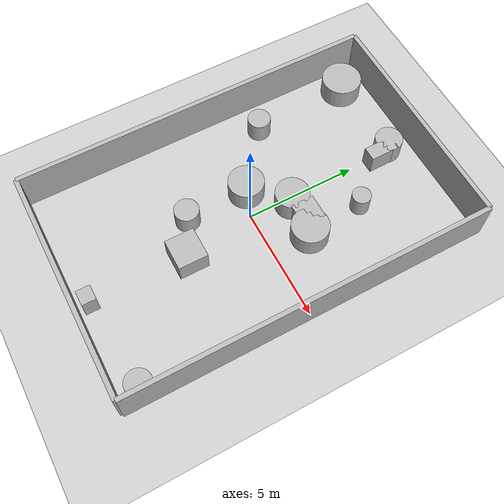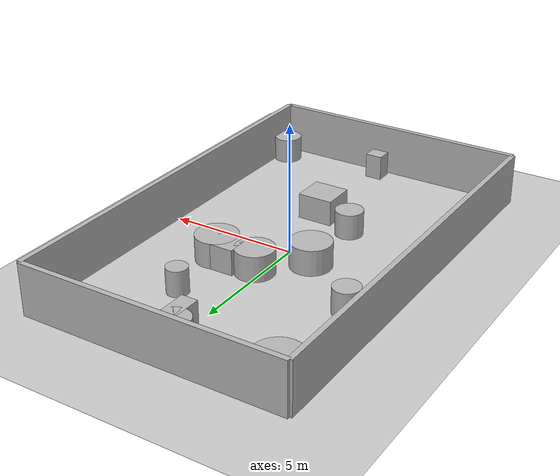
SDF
<?xml version="1.0"?>
<sdf version="1.6">
  <world name="env_26">

    <include><uri>model://ground_plane</uri></include>
    <include><uri>model://sun</uri></include>

    <!-- WALLS -->
    <model name="wall_north"><static>true</static><pose>0 8.160740097807793 1 0 0 0</pose>
      <link name="link"><collision name="collision">
        <geometry><box><size>10.244619885843719 0.2 2</size></box></geometry>
      </collision><visual name="visual">
        <geometry><box><size>10.244619885843719 0.2 2</size></box></geometry>
      </visual></link>
    </model>

    <model name="wall_south"><static>true</static><pose>0 -8.160740097807793 1 0 0 0</pose>
      <link name="link"><collision name="collision">
        <geometry><box><size>10.244619885843719 0.2 2</size></box></geometry>
      </collision><visual name="visual">
        <geometry><box><size>10.244619885843719 0.2 2</size></box></geometry>
      </visual></link>
    </model>

    <model name="wall_east"><static>true</static><pose>5.122309942921859 0 1 0 0 1.57</pose>
      <link name="link"><collision name="collision">
        <geometry><box><size>16.321480195615585 0.2 2</size></box></geometry>
      </collision><visual name="visual">
        <geometry><box><size>16.321480195615585 0.2 2</size></box></geometry>
      </visual></link>
    </model>

    <model name="wall_west"><static>true</static><pose>-5.122309942921859 0 1 0 0 1.57</pose>
      <link name="link"><collision name="collision">
        <geometry><box><size>16.321480195615585 0.2 2</size></box></geometry>
      </collision><visual name="visual">
        <geometry><box><size>16.321480195615585 0.2 2</size></box></geometry>
      </visual></link>
    </model>

    <!-- SENSOR -->

    <model name="lidar_sensor">
      <static>true</static>
      <pose>1.8294129408492186 -4.936579735030827 0.4 0 0 0</pose>
      <link name="link">
        <sensor name="lidar" type="ray">
          <pose>0 0 0 0 0 0</pose>
          <visualize>true</visualize>
          <always_on>true</always_on>
          <update_rate>10</update_rate>
          <ray>
            <scan><horizontal>
              <samples>120</samples>
              <resolution>1</resolution>
              <min_angle>-3.14159</min_angle>
              <max_angle>3.14159</max_angle>
            </horizontal></scan>
            <range><min>0.15</min><max>20.0</max><resolution>0.01</resolution></range>
          </ray>
          <plugin name="lidar_plugin" filename="liblidar_plugin.so"/>
        </sensor>
      </link>
    </model>

    <!-- OBSTACLES -->

    <model name="obstacle_0">
      <static>true</static>
      <pose>0.18352384214944983 6.387839766185268 0.5 0 0 0</pose>
      <link name="link">
        <collision name="collision">
          <geometry><box><size>0.64 1.32 1.0</size></box></geometry>
        </collision>
        <visual name="visual">
          <geometry><box><size>0.64 1.32 1.0</size></box></geometry>
        </visual>
      </link>
    </model>

    <model name="obstacle_1">
      <static>true</static>
      <pose>-3.9206642139454835 6.874268670357084 0.5 0 0 0</pose>
      <link name="link">
        <collision name="collision">
          <geometry><cylinder><radius>0.89</radius><length>1.0</length></cylinder></geometry>
        </collision>
        <visual name="visual">
          <geometry><cylinder><radius>0.89</radius><length>1.0</length></cylinder></geometry>
        </visual>
      </link>
    </model>

    <model name="obstacle_2">
      <static>true</static>
      <pose>1.7681677418004123 4.349842122609111 0.5 0 0 0</pose>
      <link name="link">
        <collision name="collision">
          <geometry><cylinder><radius>0.41</radius><length>1.0</length></cylinder></geometry>
        </collision>
        <visual name="visual">
          <geometry><cylinder><radius>0.41</radius><length>1.0</length></cylinder></geometry>
        </visual>
      </link>
    </model>

    <model name="obstacle_3">
      <static>true</static>
      <pose>0.47463569275826245 -7.566163461554586 0.5 0 0 0</pose>
      <link name="link">
        <collision name="collision">
          <geometry><box><size>0.68 0.62 1.0</size></box></geometry>
        </collision>
        <visual name="visual">
          <geometry><box><size>0.68 0.62 1.0</size></box></geometry>
        </visual>
      </link>
    </model>

    <model name="obstacle_4">
      <static>true</static>
      <pose>-3.7293280604281978 2.442731133099697 0.5 0 0 0</pose>
      <link name="link">
        <collision name="collision">
          <geometry><cylinder><radius>0.51</radius><length>1.0</length></cylinder></geometry>
        </collision>
        <visual name="visual">
          <geometry><cylinder><radius>0.51</radius><length>1.0</length></cylinder></geometry>
        </visual>
      </link>
    </model>

    <model name="obstacle_5">
      <static>true</static>
      <pose>0.5073903219687539 -3.2273341893839875 0.5 0 0 0</pose>
      <link name="link">
        <collision name="collision">
          <geometry><box><size>1.39 1.3 1.0</size></box></geometry>
        </collision>
        <visual name="visual">
          <geometry><box><size>1.39 1.3 1.0</size></box></geometry>
        </visual>
      </link>
    </model>

    <model name="obstacle_6">
      <static>true</static>
      <pose>1.9811122470861244 1.7324781546021395 0.5 0 0 0</pose>
      <link name="link">
        <collision name="collision">
          <geometry><cylinder><radius>0.82</radius><length>1.0</length></cylinder></geometry>
        </collision>
        <visual name="visual">
          <geometry><cylinder><radius>0.82</radius><length>1.0</length></cylinder></geometry>
        </visual>
      </link>
    </model>

    <model name="obstacle_7">
      <static>true</static>
      <pose>-1.1341173763814227 0.39595845205287183 0.5 0 0 0</pose>
      <link name="link">
        <collision name="collision">
          <geometry><cylinder><radius>0.79</radius><length>1.0</length></cylinder></geometry>
        </collision>
        <visual name="visual">
          <geometry><cylinder><radius>0.79</radius><length>1.0</length></cylinder></geometry>
        </visual>
      </link>
    </model>

    <model name="obstacle_8">
      <static>true</static>
      <pose>0.2836488056803672 1.8445128719303927 0.5 0 0 0</pose>
      <link name="link">
        <collision name="collision">
          <geometry><cylinder><radius>0.75</radius><length>1.0</length></cylinder></geometry>
        </collision>
        <visual name="visual">
          <geometry><cylinder><radius>0.75</radius><length>1.0</length></cylinder></geometry>
        </visual>
      </link>
    </model>

    <model name="obstacle_9">
      <static>true</static>
      <pose>-1.0881346288380622 -2.440172645215295 0.5 0 0 0</pose>
      <link name="link">
        <collision name="collision">
          <geometry><cylinder><radius>0.54</radius><length>1.0</length></cylinder></geometry>
        </collision>
        <visual name="visual">
          <geometry><cylinder><radius>0.54</radius><length>1.0</length></cylinder></geometry>
        </visual>
      </link>
    </model>

    <model name="obstacle_10">
      <static>true</static>
      <pose>1.3580057172197293 1.9954863578524744 0.5 0 0 0</pose>
      <link name="link">
        <collision name="collision">
          <geometry><box><size>1.09 1.03 1.0</size></box></geometry>
        </collision>
        <visual name="visual">
          <geometry><box><size>1.09 1.03 1.0</size></box></geometry>
        </visual>
      </link>
    </model>

    <model name="obstacle_11">
      <static>true</static>
      <pose>-0.08514397335935175 6.93753902834338 0.5 0 0 0</pose>
      <link name="link">
        <collision name="collision">
          <geometry><cylinder><radius>0.61</radius><length>1.0</length></cylinder></geometry>
        </collision>
        <visual name="visual">
          <geometry><cylinder><radius>0.61</radius><length>1.0</length></cylinder></geometry>
        </visual>
      </link>
    </model>

    <model name="obstacle_12">
      <static>true</static>
      <pose>4.593021256737098 -7.1814447593620665 0.5 0 0 0</pose>
      <link name="link">
        <collision name="collision">
          <geometry><cylinder><radius>0.56</radius><length>1.0</length></cylinder></geometry>
        </collision>
        <visual name="visual">
          <geometry><cylinder><radius>0.56</radius><length>1.0</length></cylinder></geometry>
        </visual>
      </link>
    </model>

  </world>
</sdf>
